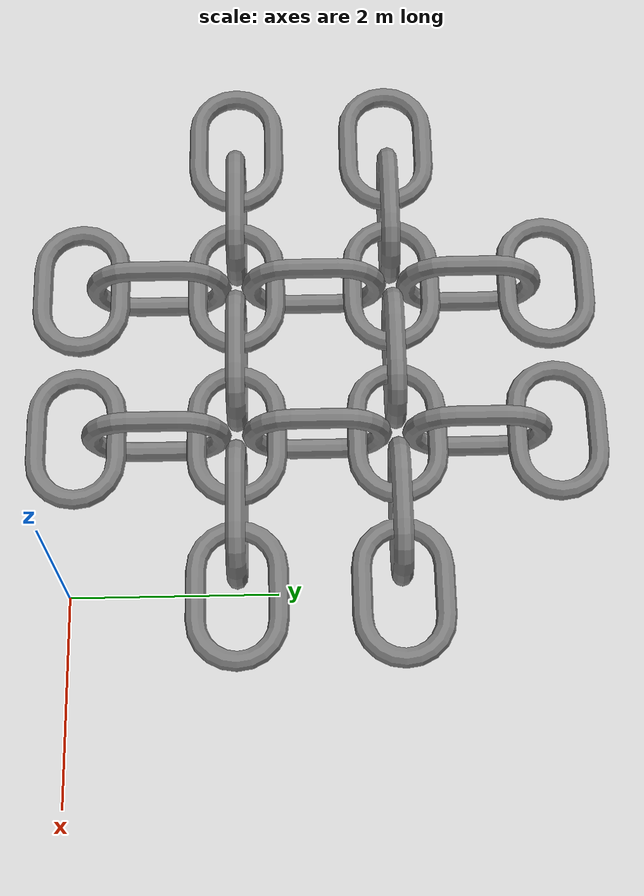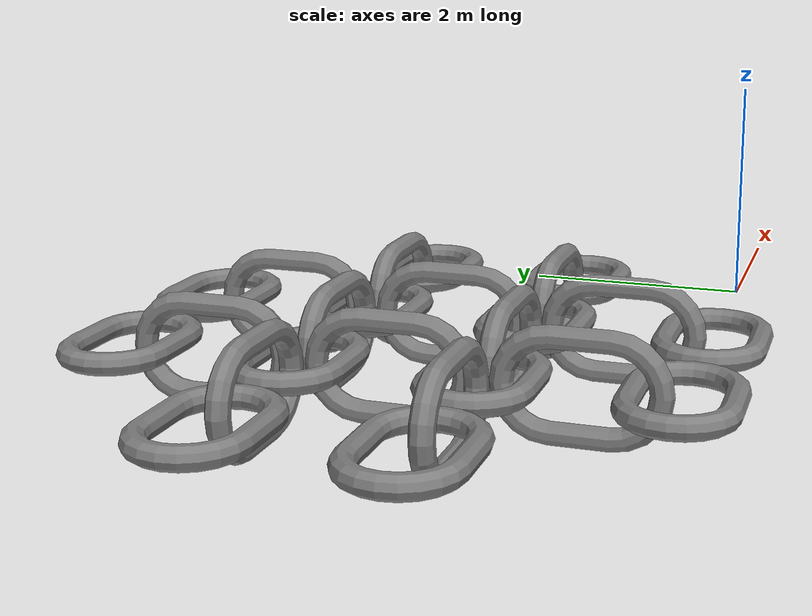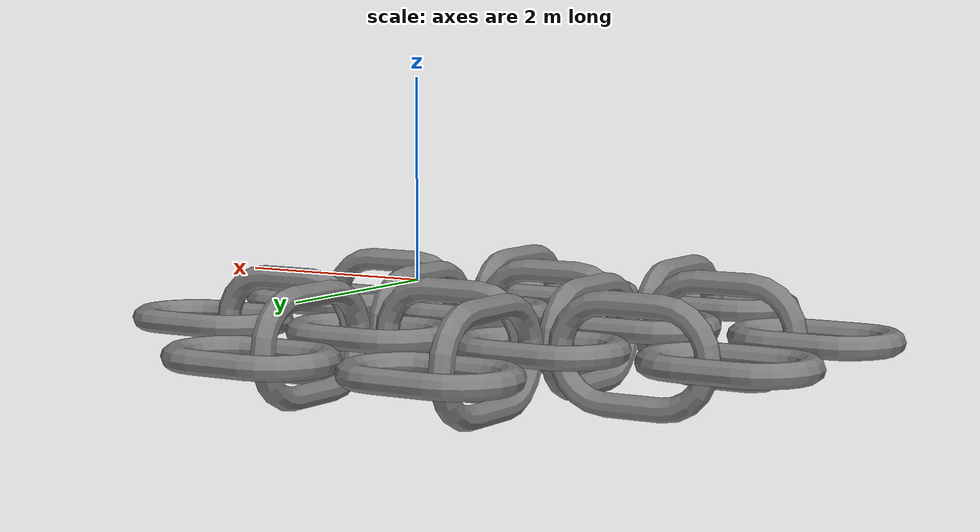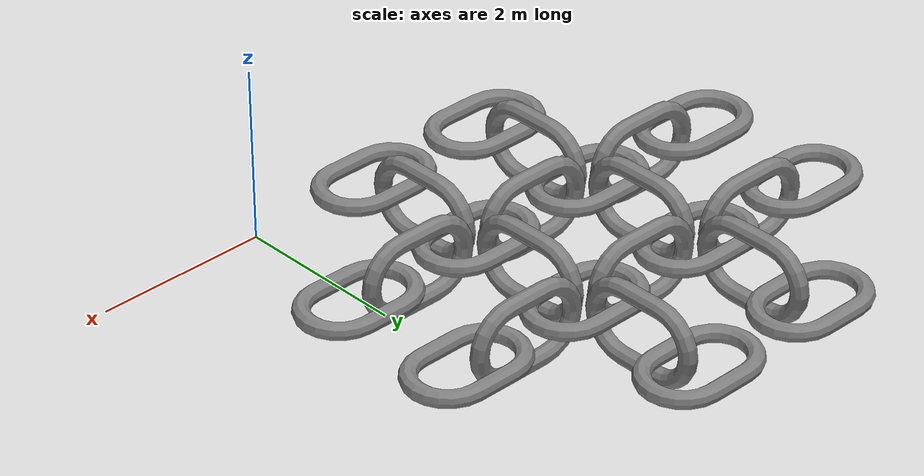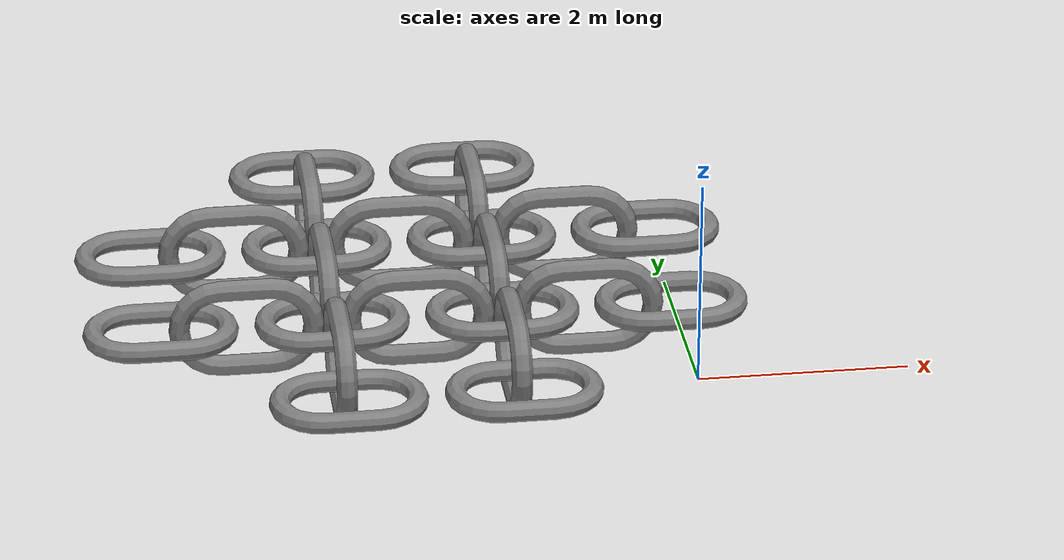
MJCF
<mujoco>
    <asset>
        <mesh file="wrecking-ball/link.obj" name="wrecking-ball/link"/>
    </asset>
    <worldbody>
        <body pos="-1.65 0.0 0" quat="-2.16489e-17 -0.707107 0.707107 2.16489e-17">
            <geom mesh="wrecking-ball/link" type="mesh" density="7680.000000"/>
            <inertial mass="0"/>
        </body>
        <body pos="-1.65 0.8 0" quat="0.707107 -2.16489e-17 -0.707107 -2.16489e-17">
            <geom mesh="wrecking-ball/link" type="mesh" density="7680.000000"/>
        </body>
        <body pos="-3.3 0.0 0" quat="-2.16489e-17 -0.707107 0.707107 2.16489e-17">
            <geom mesh="wrecking-ball/link" type="mesh" density="7680.000000"/>
            <inertial mass="0"/>
        </body>
        <body pos="-3.3 0.8 0" quat="0.707107 -2.16489e-17 -0.707107 -2.16489e-17">
            <geom mesh="wrecking-ball/link" type="mesh" density="7680.000000"/>
        </body>
        <body pos="-0 1.6 0" quat="-2.16489e-17 -0.707107 0.707107 2.16489e-17">
            <geom mesh="wrecking-ball/link" type="mesh" density="7680.000000"/>
            <inertial mass="0"/>
        </body>
        <body pos="-0.825 1.6 0" quat="-0.5 0.5 0.5 0.5">
            <geom mesh="wrecking-ball/link" type="mesh" density="7680.000000"/>
        </body>
        <body pos="-1.65 1.6 0" quat="-2.16489e-17 -0.707107 0.707107 2.16489e-17">
            <geom mesh="wrecking-ball/link" type="mesh" density="7680.000000"/>
        </body>
        <body pos="-2.475 1.6 0" quat="-0.5 0.5 0.5 0.5">
            <geom mesh="wrecking-ball/link" type="mesh" density="7680.000000"/>
        </body>
        <body pos="-1.65 2.4000000000000004 0" quat="0.707107 -2.16489e-17 -0.707107 -2.16489e-17">
            <geom mesh="wrecking-ball/link" type="mesh" density="7680.000000"/>
        </body>
        <body pos="-3.3 1.6 0" quat="-2.16489e-17 -0.707107 0.707107 2.16489e-17">
            <geom mesh="wrecking-ball/link" type="mesh" density="7680.000000"/>
        </body>
        <body pos="-4.125 1.6 0" quat="-0.5 0.5 0.5 0.5">
            <geom mesh="wrecking-ball/link" type="mesh" density="7680.000000"/>
        </body>
        <body pos="-3.3 2.4000000000000004 0" quat="0.707107 -2.16489e-17 -0.707107 -2.16489e-17">
            <geom mesh="wrecking-ball/link" type="mesh" density="7680.000000"/>
        </body>
        <body pos="-4.95 1.6 0" quat="-2.16489e-17 -0.707107 0.707107 2.16489e-17">
            <geom mesh="wrecking-ball/link" type="mesh" density="7680.000000"/>
            <inertial mass="0"/>
        </body>
        <body pos="-0 3.2 0" quat="-2.16489e-17 -0.707107 0.707107 2.16489e-17">
            <geom mesh="wrecking-ball/link" type="mesh" density="7680.000000"/>
            <inertial mass="0"/>
        </body>
        <body pos="-0.825 3.2 0" quat="-0.5 0.5 0.5 0.5">
            <geom mesh="wrecking-ball/link" type="mesh" density="7680.000000"/>
        </body>
        <body pos="-1.65 3.2 0" quat="-2.16489e-17 -0.707107 0.707107 2.16489e-17">
            <geom mesh="wrecking-ball/link" type="mesh" density="7680.000000"/>
        </body>
        <body pos="-2.475 3.2 0" quat="-0.5 0.5 0.5 0.5">
            <geom mesh="wrecking-ball/link" type="mesh" density="7680.000000"/>
        </body>
        <body pos="-1.65 4.0 0" quat="0.707107 -2.16489e-17 -0.707107 -2.16489e-17">
            <geom mesh="wrecking-ball/link" type="mesh" density="7680.000000"/>
        </body>
        <body pos="-3.3 3.2 0" quat="-2.16489e-17 -0.707107 0.707107 2.16489e-17">
            <geom mesh="wrecking-ball/link" type="mesh" density="7680.000000"/>
        </body>
        <body pos="-4.125 3.2 0" quat="-0.5 0.5 0.5 0.5">
            <geom mesh="wrecking-ball/link" type="mesh" density="7680.000000"/>
        </body>
        <body pos="-3.3 4.0 0" quat="0.707107 -2.16489e-17 -0.707107 -2.16489e-17">
            <geom mesh="wrecking-ball/link" type="mesh" density="7680.000000"/>
        </body>
        <body pos="-4.95 3.2 0" quat="-2.16489e-17 -0.707107 0.707107 2.16489e-17">
            <geom mesh="wrecking-ball/link" type="mesh" density="7680.000000"/>
            <inertial mass="0"/>
        </body>
        <body pos="-1.65 4.800000000000001 0" quat="-2.16489e-17 -0.707107 0.707107 2.16489e-17">
            <geom mesh="wrecking-ball/link" type="mesh" density="7680.000000"/>
            <inertial mass="0"/>
        </body>
        <body pos="-3.3 4.800000000000001 0" quat="-2.16489e-17 -0.707107 0.707107 2.16489e-17">
            <geom mesh="wrecking-ball/link" type="mesh" density="7680.000000"/>
            <inertial mass="0"/>
        </body>
    </worldbody>
</mujoco>
